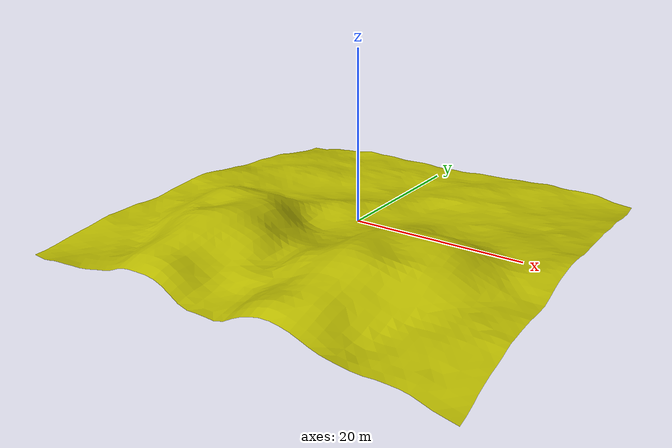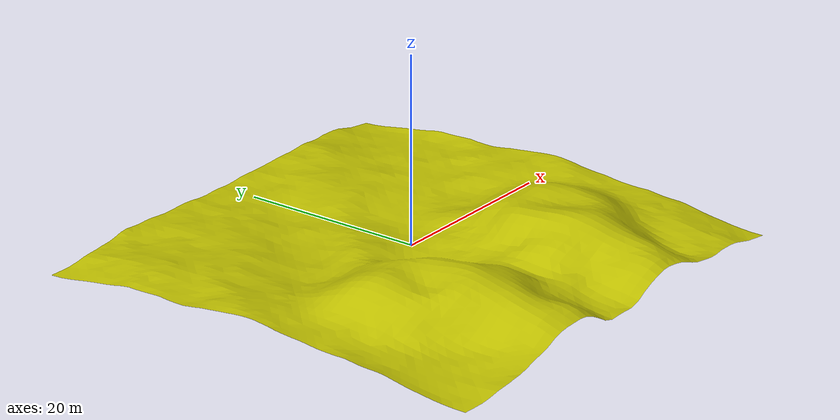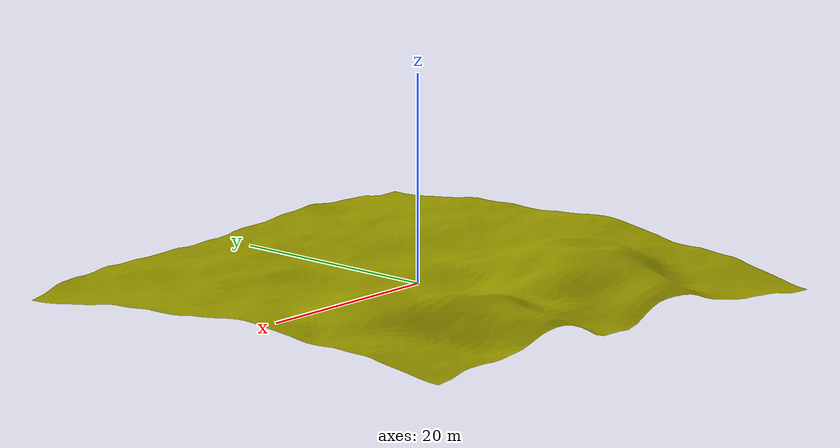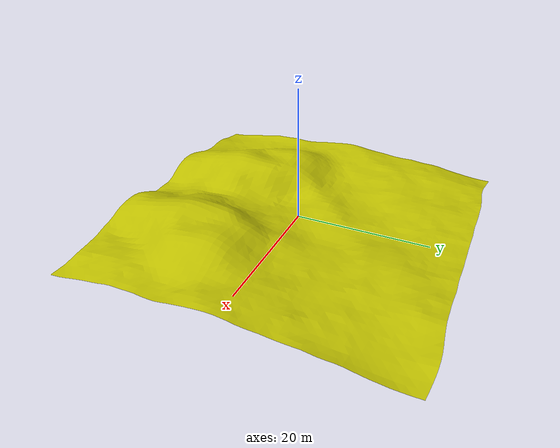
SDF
<?xml version="1.0" ?>
<sdf version="1.5">
  <model name="ISCAS_groundplane">
    <static>true</static>
    <link name="link">
      <collision name="collision">
        <geometry>

          <mesh>

          <uri>model://ISCAS_Museum/meshes/landscape8.dae</uri>
          </mesh>
        </geometry>
        <surface>
          <friction>
            <ode>
              <mu>100</mu>
              <mu2>50</mu2>
            </ode>
          </friction>
        </surface>
      </collision>
      <visual name="visual">
        <cast_shadows>false</cast_shadows>
        <geometry>

          <mesh>

          <uri>model://ISCAS_Museum/meshes/landscape8.dae</uri>
          </mesh>
 </geometry>
        <material>
          <ambient>0.1 0.1 0.1 1</ambient>
          <diffuse>0.75 0.75 0 1</diffuse>
          <specular>0 0 0 0</specular>
          <emissive>0 0 0 1</emissive>

      </material>
      </visual>
    </link>
  </model>
</sdf>
